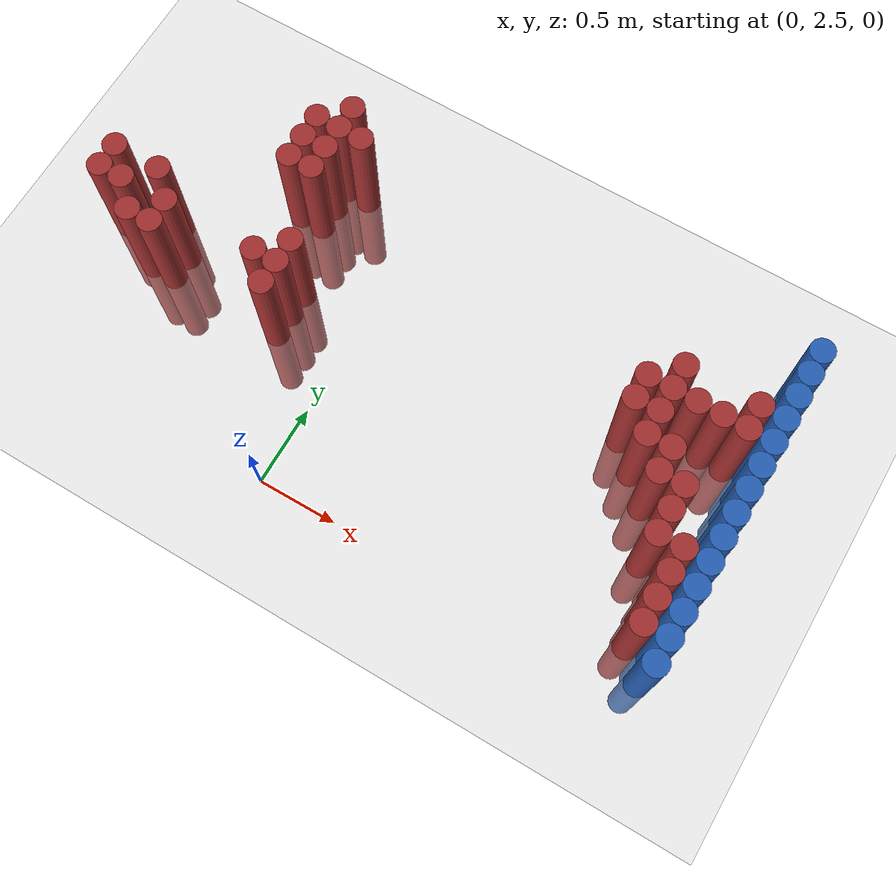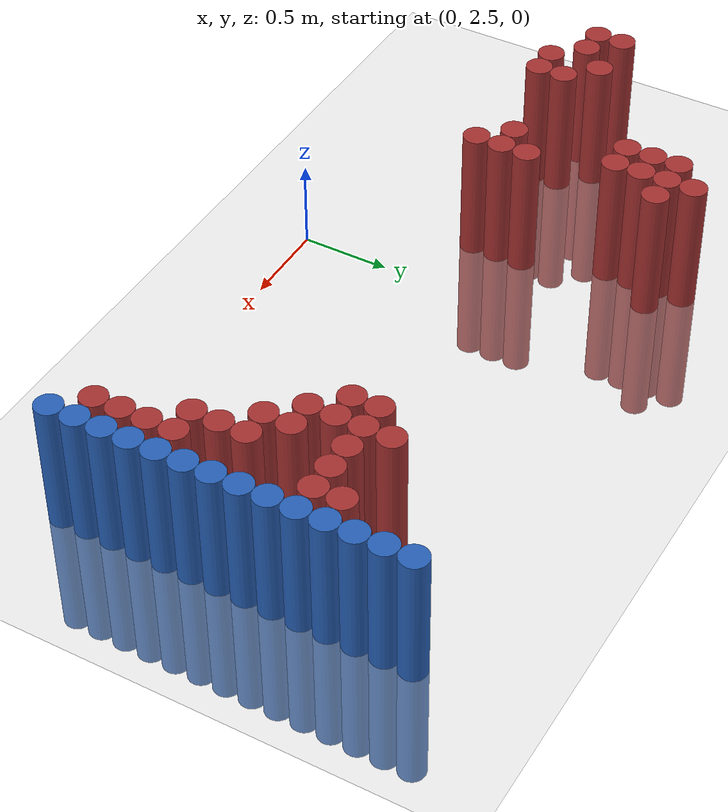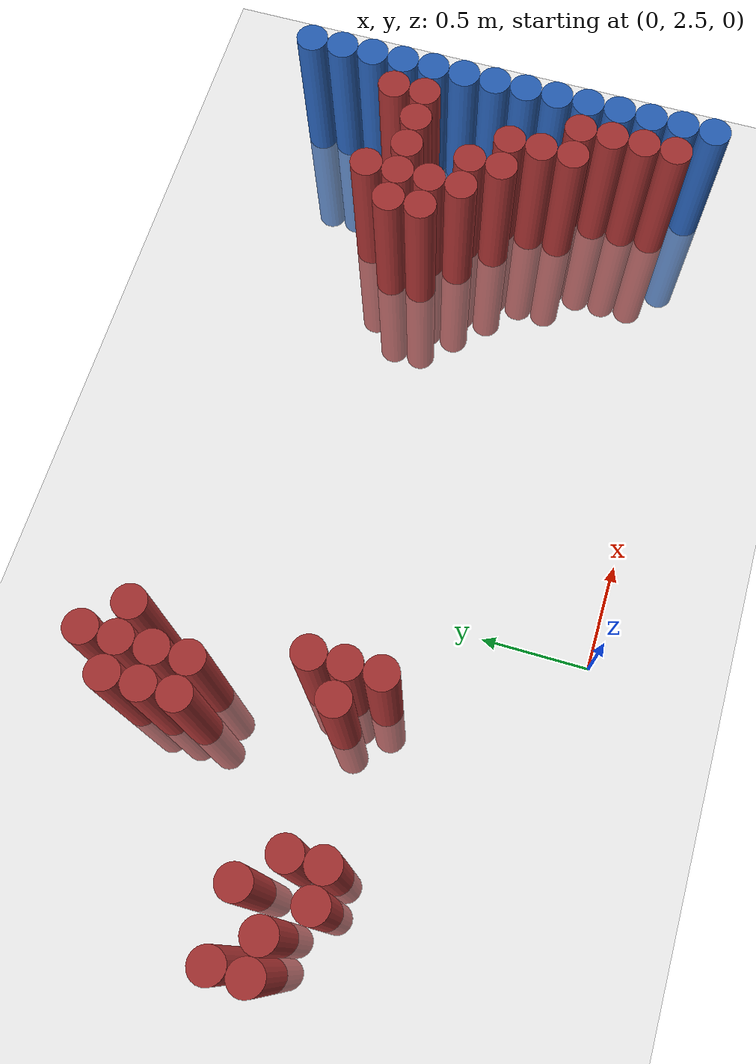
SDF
<sdf version="1.6">
 <world name="default">
  <model name="ground_plane">
   <static>1</static>
   <link name="link">
    <collision name="collision">
     <geometry><plane><normal>0 0 1</normal><size>100 100</size></plane></geometry>
     <surface><friction><ode><mu>100</mu><mu2>50</mu2></ode></friction></surface>
    </collision>
    <visual name="visual">
     <cast_shadows>0</cast_shadows>
     <geometry><plane><normal>0 0 1</normal><size>100 100</size></plane></geometry>
     <material>
      <script><uri>file://media/materials/scripts/gazebo.material</uri><name>Gazebo/Grey</name></script>
     </material>
    </visual>
   </link>
  </model>
  <model name="unit_cylinder_152">
   <static>1</static>
   <pose>-1.625000 3.475000 0.000000 0.000000 0.000000 0.000000</pose>
   <link name="link">
    <inertial>
     <mass>1</mass>
     <inertia><ixx>0.145833</ixx><ixy>0</ixy><ixz>0</ixz><iyy>0.145833</iyy><iyz>0</iyz><izz>0.125</izz></inertia>
    </inertial>
    <collision name="collision">
     <geometry><cylinder><radius>0.075000</radius><length>1.5</length></cylinder></geometry>
    </collision>
    <visual name="visual">
     <geometry><cylinder><radius>0.075000</radius><length>1.5</length></cylinder></geometry>
     <material>
      <ambient>0.648000 0.192000 0.192000 1</ambient>
      <diffuse>0.648000 0.192000 0.192000 1</diffuse>
     </material>
     <material>
      <script><name>Gazebo/Grey</name><uri>file://media/materials/scripts/gazebo.material</uri></script>
     </material>
    </visual>
   </link>
  </model>
  <model name="unit_cylinder_153">
   <static>1</static>
   <pose>-1.625000 3.625000 0.000000 0.000000 0.000000 0.000000</pose>
   <link name="link">
    <inertial>
     <mass>1</mass>
     <inertia><ixx>0.145833</ixx><ixy>0</ixy><ixz>0</ixz><iyy>0.145833</iyy><iyz>0</iyz><izz>0.125</izz></inertia>
    </inertial>
    <collision name="collision">
     <geometry><cylinder><radius>0.075000</radius><length>1.5</length></cylinder></geometry>
    </collision>
    <visual name="visual">
     <geometry><cylinder><radius>0.075000</radius><length>1.5</length></cylinder></geometry>
     <material>
      <ambient>0.648000 0.192000 0.192000 1</ambient>
      <diffuse>0.648000 0.192000 0.192000 1</diffuse>
     </material>
     <material>
      <script><name>Gazebo/Grey</name><uri>file://media/materials/scripts/gazebo.material</uri></script>
     </material>
    </visual>
   </link>
  </model>
  <model name="unit_cylinder_154">
   <static>1</static>
   <pose>-1.475000 3.475000 0.000000 0.000000 0.000000 0.000000</pose>
   <link name="link">
    <inertial>
     <mass>1</mass>
     <inertia><ixx>0.145833</ixx><ixy>0</ixy><ixz>0</ixz><iyy>0.145833</iyy><iyz>0</iyz><izz>0.125</izz></inertia>
    </inertial>
    <collision name="collision">
     <geometry><cylinder><radius>0.075000</radius><length>1.5</length></cylinder></geometry>
    </collision>
    <visual name="visual">
     <geometry><cylinder><radius>0.075000</radius><length>1.5</length></cylinder></geometry>
     <material>
      <ambient>0.648000 0.192000 0.192000 1</ambient>
      <diffuse>0.648000 0.192000 0.192000 1</diffuse>
     </material>
     <material>
      <script><name>Gazebo/Grey</name><uri>file://media/materials/scripts/gazebo.material</uri></script>
     </material>
    </visual>
   </link>
  </model>
  <model name="unit_cylinder_156">
   <static>1</static>
   <pose>-1.325000 3.325000 0.000000 0.000000 0.000000 0.000000</pose>
   <link name="link">
    <inertial>
     <mass>1</mass>
     <inertia><ixx>0.145833</ixx><ixy>0</ixy><ixz>0</ixz><iyy>0.145833</iyy><iyz>0</iyz><izz>0.125</izz></inertia>
    </inertial>
    <collision name="collision">
     <geometry><cylinder><radius>0.075000</radius><length>1.5</length></cylinder></geometry>
    </collision>
    <visual name="visual">
     <geometry><cylinder><radius>0.075000</radius><length>1.5</length></cylinder></geometry>
     <material>
      <ambient>0.648000 0.192000 0.192000 1</ambient>
      <diffuse>0.648000 0.192000 0.192000 1</diffuse>
     </material>
     <material>
      <script><name>Gazebo/Grey</name><uri>file://media/materials/scripts/gazebo.material</uri></script>
     </material>
    </visual>
   </link>
  </model>
  <model name="unit_cylinder_157">
   <static>1</static>
   <pose>-1.325000 3.625000 0.000000 0.000000 0.000000 0.000000</pose>
   <link name="link">
    <inertial>
     <mass>1</mass>
     <inertia><ixx>0.145833</ixx><ixy>0</ixy><ixz>0</ixz><iyy>0.145833</iyy><iyz>0</iyz><izz>0.125</izz></inertia>
    </inertial>
    <collision name="collision">
     <geometry><cylinder><radius>0.075000</radius><length>1.5</length></cylinder></geometry>
    </collision>
    <visual name="visual">
     <geometry><cylinder><radius>0.075000</radius><length>1.5</length></cylinder></geometry>
     <material>
      <ambient>0.648000 0.192000 0.192000 1</ambient>
      <diffuse>0.648000 0.192000 0.192000 1</diffuse>
     </material>
     <material>
      <script><name>Gazebo/Grey</name><uri>file://media/materials/scripts/gazebo.material</uri></script>
     </material>
    </visual>
   </link>
  </model>
  <model name="unit_cylinder_160">
   <static>1</static>
   <pose>-1.175000 3.325000 0.000000 0.000000 0.000000 0.000000</pose>
   <link name="link">
    <inertial>
     <mass>1</mass>
     <inertia><ixx>0.145833</ixx><ixy>0</ixy><ixz>0</ixz><iyy>0.145833</iyy><iyz>0</iyz><izz>0.125</izz></inertia>
    </inertial>
    <collision name="collision">
     <geometry><cylinder><radius>0.075000</radius><length>1.5</length></cylinder></geometry>
    </collision>
    <visual name="visual">
     <geometry><cylinder><radius>0.075000</radius><length>1.5</length></cylinder></geometry>
     <material>
      <ambient>0.648000 0.192000 0.192000 1</ambient>
      <diffuse>0.648000 0.192000 0.192000 1</diffuse>
     </material>
     <material>
      <script><name>Gazebo/Grey</name><uri>file://media/materials/scripts/gazebo.material</uri></script>
     </material>
    </visual>
   </link>
  </model>
  <model name="unit_cylinder_161">
   <static>1</static>
   <pose>-1.175000 3.475000 0.000000 0.000000 0.000000 0.000000</pose>
   <link name="link">
    <inertial>
     <mass>1</mass>
     <inertia><ixx>0.145833</ixx><ixy>0</ixy><ixz>0</ixz><iyy>0.145833</iyy><iyz>0</iyz><izz>0.125</izz></inertia>
    </inertial>
    <collision name="collision">
     <geometry><cylinder><radius>0.075000</radius><length>1.5</length></cylinder></geometry>
    </collision>
    <visual name="visual">
     <geometry><cylinder><radius>0.075000</radius><length>1.5</length></cylinder></geometry>
     <material>
      <ambient>0.648000 0.192000 0.192000 1</ambient>
      <diffuse>0.648000 0.192000 0.192000 1</diffuse>
     </material>
     <material>
      <script><name>Gazebo/Grey</name><uri>file://media/materials/scripts/gazebo.material</uri></script>
     </material>
    </visual>
   </link>
  </model>
  <model name="unit_cylinder_172">
   <static>1</static>
   <pose>-0.725000 4.075000 0.000000 0.000000 0.000000 0.000000</pose>
   <link name="link">
    <inertial>
     <mass>1</mass>
     <inertia><ixx>0.145833</ixx><ixy>0</ixy><ixz>0</ixz><iyy>0.145833</iyy><iyz>0</iyz><izz>0.125</izz></inertia>
    </inertial>
    <collision name="collision">
     <geometry><cylinder><radius>0.075000</radius><length>1.5</length></cylinder></geometry>
    </collision>
    <visual name="visual">
     <geometry><cylinder><radius>0.075000</radius><length>1.5</length></cylinder></geometry>
     <material>
      <ambient>0.648000 0.192000 0.192000 1</ambient>
      <diffuse>0.648000 0.192000 0.192000 1</diffuse>
     </material>
     <material>
      <script><name>Gazebo/Grey</name><uri>file://media/materials/scripts/gazebo.material</uri></script>
     </material>
    </visual>
   </link>
  </model>
  <model name="unit_cylinder_173">
   <static>1</static>
   <pose>-0.725000 4.225000 0.000000 0.000000 0.000000 0.000000</pose>
   <link name="link">
    <inertial>
     <mass>1</mass>
     <inertia><ixx>0.145833</ixx><ixy>0</ixy><ixz>0</ixz><iyy>0.145833</iyy><iyz>0</iyz><izz>0.125</izz></inertia>
    </inertial>
    <collision name="collision">
     <geometry><cylinder><radius>0.075000</radius><length>1.5</length></cylinder></geometry>
    </collision>
    <visual name="visual">
     <geometry><cylinder><radius>0.075000</radius><length>1.5</length></cylinder></geometry>
     <material>
      <ambient>0.648000 0.192000 0.192000 1</ambient>
      <diffuse>0.648000 0.192000 0.192000 1</diffuse>
     </material>
     <material>
      <script><name>Gazebo/Grey</name><uri>file://media/materials/scripts/gazebo.material</uri></script>
     </material>
    </visual>
   </link>
  </model>
  <model name="unit_cylinder_174">
   <static>1</static>
   <pose>-0.725000 4.375000 0.000000 0.000000 0.000000 0.000000</pose>
   <link name="link">
    <inertial>
     <mass>1</mass>
     <inertia><ixx>0.145833</ixx><ixy>0</ixy><ixz>0</ixz><iyy>0.145833</iyy><iyz>0</iyz><izz>0.125</izz></inertia>
    </inertial>
    <collision name="collision">
     <geometry><cylinder><radius>0.075000</radius><length>1.5</length></cylinder></geometry>
    </collision>
    <visual name="visual">
     <geometry><cylinder><radius>0.075000</radius><length>1.5</length></cylinder></geometry>
     <material>
      <ambient>0.648000 0.192000 0.192000 1</ambient>
      <diffuse>0.648000 0.192000 0.192000 1</diffuse>
     </material>
     <material>
      <script><name>Gazebo/Grey</name><uri>file://media/materials/scripts/gazebo.material</uri></script>
     </material>
    </visual>
   </link>
  </model>
  <model name="unit_cylinder_175">
   <static>1</static>
   <pose>-0.575000 3.475000 0.000000 0.000000 0.000000 0.000000</pose>
   <link name="link">
    <inertial>
     <mass>1</mass>
     <inertia><ixx>0.145833</ixx><ixy>0</ixy><ixz>0</ixz><iyy>0.145833</iyy><iyz>0</iyz><izz>0.125</izz></inertia>
    </inertial>
    <collision name="collision">
     <geometry><cylinder><radius>0.075000</radius><length>1.5</length></cylinder></geometry>
    </collision>
    <visual name="visual">
     <geometry><cylinder><radius>0.075000</radius><length>1.5</length></cylinder></geometry>
     <material>
      <ambient>0.648000 0.192000 0.192000 1</ambient>
      <diffuse>0.648000 0.192000 0.192000 1</diffuse>
     </material>
     <material>
      <script><name>Gazebo/Grey</name><uri>file://media/materials/scripts/gazebo.material</uri></script>
     </material>
    </visual>
   </link>
  </model>
  <model name="unit_cylinder_176">
   <static>1</static>
   <pose>-0.575000 4.075000 0.000000 0.000000 0.000000 0.000000</pose>
   <link name="link">
    <inertial>
     <mass>1</mass>
     <inertia><ixx>0.145833</ixx><ixy>0</ixy><ixz>0</ixz><iyy>0.145833</iyy><iyz>0</iyz><izz>0.125</izz></inertia>
    </inertial>
    <collision name="collision">
     <geometry><cylinder><radius>0.075000</radius><length>1.5</length></cylinder></geometry>
    </collision>
    <visual name="visual">
     <geometry><cylinder><radius>0.075000</radius><length>1.5</length></cylinder></geometry>
     <material>
      <ambient>0.648000 0.192000 0.192000 1</ambient>
      <diffuse>0.648000 0.192000 0.192000 1</diffuse>
     </material>
     <material>
      <script><name>Gazebo/Grey</name><uri>file://media/materials/scripts/gazebo.material</uri></script>
     </material>
    </visual>
   </link>
  </model>
  <model name="unit_cylinder_177">
   <static>1</static>
   <pose>-0.575000 4.225000 0.000000 0.000000 0.000000 0.000000</pose>
   <link name="link">
    <inertial>
     <mass>1</mass>
     <inertia><ixx>0.145833</ixx><ixy>0</ixy><ixz>0</ixz><iyy>0.145833</iyy><iyz>0</iyz><izz>0.125</izz></inertia>
    </inertial>
    <collision name="collision">
     <geometry><cylinder><radius>0.075000</radius><length>1.5</length></cylinder></geometry>
    </collision>
    <visual name="visual">
     <geometry><cylinder><radius>0.075000</radius><length>1.5</length></cylinder></geometry>
     <material>
      <ambient>0.648000 0.192000 0.192000 1</ambient>
      <diffuse>0.648000 0.192000 0.192000 1</diffuse>
     </material>
     <material>
      <script><name>Gazebo/Grey</name><uri>file://media/materials/scripts/gazebo.material</uri></script>
     </material>
    </visual>
   </link>
  </model>
  <model name="unit_cylinder_178">
   <static>1</static>
   <pose>-0.575000 4.375000 0.000000 0.000000 0.000000 0.000000</pose>
   <link name="link">
    <inertial>
     <mass>1</mass>
     <inertia><ixx>0.145833</ixx><ixy>0</ixy><ixz>0</ixz><iyy>0.145833</iyy><iyz>0</iyz><izz>0.125</izz></inertia>
    </inertial>
    <collision name="collision">
     <geometry><cylinder><radius>0.075000</radius><length>1.5</length></cylinder></geometry>
    </collision>
    <visual name="visual">
     <geometry><cylinder><radius>0.075000</radius><length>1.5</length></cylinder></geometry>
     <material>
      <ambient>0.648000 0.192000 0.192000 1</ambient>
      <diffuse>0.648000 0.192000 0.192000 1</diffuse>
     </material>
     <material>
      <script><name>Gazebo/Grey</name><uri>file://media/materials/scripts/gazebo.material</uri></script>
     </material>
    </visual>
   </link>
  </model>
  <model name="unit_cylinder_179">
   <static>1</static>
   <pose>-0.575000 4.525000 0.000000 0.000000 0.000000 0.000000</pose>
   <link name="link">
    <inertial>
     <mass>1</mass>
     <inertia><ixx>0.145833</ixx><ixy>0</ixy><ixz>0</ixz><iyy>0.145833</iyy><iyz>0</iyz><izz>0.125</izz></inertia>
    </inertial>
    <collision name="collision">
     <geometry><cylinder><radius>0.075000</radius><length>1.5</length></cylinder></geometry>
    </collision>
    <visual name="visual">
     <geometry><cylinder><radius>0.075000</radius><length>1.5</length></cylinder></geometry>
     <material>
      <ambient>0.648000 0.192000 0.192000 1</ambient>
      <diffuse>0.648000 0.192000 0.192000 1</diffuse>
     </material>
     <material>
      <script><name>Gazebo/Grey</name><uri>file://media/materials/scripts/gazebo.material</uri></script>
     </material>
    </visual>
   </link>
  </model>
  <model name="unit_cylinder_181">
   <static>1</static>
   <pose>-0.425000 3.325000 0.000000 0.000000 0.000000 0.000000</pose>
   <link name="link">
    <inertial>
     <mass>1</mass>
     <inertia><ixx>0.145833</ixx><ixy>0</ixy><ixz>0</ixz><iyy>0.145833</iyy><iyz>0</iyz><izz>0.125</izz></inertia>
    </inertial>
    <collision name="collision">
     <geometry><cylinder><radius>0.075000</radius><length>1.5</length></cylinder></geometry>
    </collision>
    <visual name="visual">
     <geometry><cylinder><radius>0.075000</radius><length>1.5</length></cylinder></geometry>
     <material>
      <ambient>0.648000 0.192000 0.192000 1</ambient>
      <diffuse>0.648000 0.192000 0.192000 1</diffuse>
     </material>
     <material>
      <script><name>Gazebo/Grey</name><uri>file://media/materials/scripts/gazebo.material</uri></script>
     </material>
    </visual>
   </link>
  </model>
  <model name="unit_cylinder_182">
   <static>1</static>
   <pose>-0.425000 3.475000 0.000000 0.000000 0.000000 0.000000</pose>
   <link name="link">
    <inertial>
     <mass>1</mass>
     <inertia><ixx>0.145833</ixx><ixy>0</ixy><ixz>0</ixz><iyy>0.145833</iyy><iyz>0</iyz><izz>0.125</izz></inertia>
    </inertial>
    <collision name="collision">
     <geometry><cylinder><radius>0.075000</radius><length>1.5</length></cylinder></geometry>
    </collision>
    <visual name="visual">
     <geometry><cylinder><radius>0.075000</radius><length>1.5</length></cylinder></geometry>
     <material>
      <ambient>0.648000 0.192000 0.192000 1</ambient>
      <diffuse>0.648000 0.192000 0.192000 1</diffuse>
     </material>
     <material>
      <script><name>Gazebo/Grey</name><uri>file://media/materials/scripts/gazebo.material</uri></script>
     </material>
    </visual>
   </link>
  </model>
  <model name="unit_cylinder_183">
   <static>1</static>
   <pose>-0.425000 3.625000 0.000000 0.000000 0.000000 0.000000</pose>
   <link name="link">
    <inertial>
     <mass>1</mass>
     <inertia><ixx>0.145833</ixx><ixy>0</ixy><ixz>0</ixz><iyy>0.145833</iyy><iyz>0</iyz><izz>0.125</izz></inertia>
    </inertial>
    <collision name="collision">
     <geometry><cylinder><radius>0.075000</radius><length>1.5</length></cylinder></geometry>
    </collision>
    <visual name="visual">
     <geometry><cylinder><radius>0.075000</radius><length>1.5</length></cylinder></geometry>
     <material>
      <ambient>0.648000 0.192000 0.192000 1</ambient>
      <diffuse>0.648000 0.192000 0.192000 1</diffuse>
     </material>
     <material>
      <script><name>Gazebo/Grey</name><uri>file://media/materials/scripts/gazebo.material</uri></script>
     </material>
    </visual>
   </link>
  </model>
  <model name="unit_cylinder_184">
   <static>1</static>
   <pose>-0.425000 4.375000 0.000000 0.000000 0.000000 0.000000</pose>
   <link name="link">
    <inertial>
     <mass>1</mass>
     <inertia><ixx>0.145833</ixx><ixy>0</ixy><ixz>0</ixz><iyy>0.145833</iyy><iyz>0</iyz><izz>0.125</izz></inertia>
    </inertial>
    <collision name="collision">
     <geometry><cylinder><radius>0.075000</radius><length>1.5</length></cylinder></geometry>
    </collision>
    <visual name="visual">
     <geometry><cylinder><radius>0.075000</radius><length>1.5</length></cylinder></geometry>
     <material>
      <ambient>0.648000 0.192000 0.192000 1</ambient>
      <diffuse>0.648000 0.192000 0.192000 1</diffuse>
     </material>
     <material>
      <script><name>Gazebo/Grey</name><uri>file://media/materials/scripts/gazebo.material</uri></script>
     </material>
    </visual>
   </link>
  </model>
  <model name="unit_cylinder_204">
   <static>1</static>
   <pose>1.675000 3.775000 0.000000 0.000000 0.000000 0.000000</pose>
   <link name="link">
    <inertial>
     <mass>1</mass>
     <inertia><ixx>0.145833</ixx><ixy>0</ixy><ixz>0</ixz><iyy>0.145833</iyy><iyz>0</iyz><izz>0.125</izz></inertia>
    </inertial>
    <collision name="collision">
     <geometry><cylinder><radius>0.075000</radius><length>1.5</length></cylinder></geometry>
    </collision>
    <visual name="visual">
     <geometry><cylinder><radius>0.075000</radius><length>1.5</length></cylinder></geometry>
     <material>
      <ambient>0.648000 0.192000 0.192000 1</ambient>
      <diffuse>0.648000 0.192000 0.192000 1</diffuse>
     </material>
     <material>
      <script><name>Gazebo/Grey</name><uri>file://media/materials/scripts/gazebo.material</uri></script>
     </material>
    </visual>
   </link>
  </model>
  <model name="unit_cylinder_205">
   <static>1</static>
   <pose>1.675000 3.925000 0.000000 0.000000 0.000000 0.000000</pose>
   <link name="link">
    <inertial>
     <mass>1</mass>
     <inertia><ixx>0.145833</ixx><ixy>0</ixy><ixz>0</ixz><iyy>0.145833</iyy><iyz>0</iyz><izz>0.125</izz></inertia>
    </inertial>
    <collision name="collision">
     <geometry><cylinder><radius>0.075000</radius><length>1.5</length></cylinder></geometry>
    </collision>
    <visual name="visual">
     <geometry><cylinder><radius>0.075000</radius><length>1.5</length></cylinder></geometry>
     <material>
      <ambient>0.648000 0.192000 0.192000 1</ambient>
      <diffuse>0.648000 0.192000 0.192000 1</diffuse>
     </material>
     <material>
      <script><name>Gazebo/Grey</name><uri>file://media/materials/scripts/gazebo.material</uri></script>
     </material>
    </visual>
   </link>
  </model>
  <model name="unit_cylinder_206">
   <static>1</static>
   <pose>1.825000 3.625000 0.000000 0.000000 0.000000 0.000000</pose>
   <link name="link">
    <inertial>
     <mass>1</mass>
     <inertia><ixx>0.145833</ixx><ixy>0</ixy><ixz>0</ixz><iyy>0.145833</iyy><iyz>0</iyz><izz>0.125</izz></inertia>
    </inertial>
    <collision name="collision">
     <geometry><cylinder><radius>0.075000</radius><length>1.5</length></cylinder></geometry>
    </collision>
    <visual name="visual">
     <geometry><cylinder><radius>0.075000</radius><length>1.5</length></cylinder></geometry>
     <material>
      <ambient>0.648000 0.192000 0.192000 1</ambient>
      <diffuse>0.648000 0.192000 0.192000 1</diffuse>
     </material>
     <material>
      <script><name>Gazebo/Grey</name><uri>file://media/materials/scripts/gazebo.material</uri></script>
     </material>
    </visual>
   </link>
  </model>
  <model name="unit_cylinder_207">
   <static>1</static>
   <pose>1.825000 3.775000 0.000000 0.000000 0.000000 0.000000</pose>
   <link name="link">
    <inertial>
     <mass>1</mass>
     <inertia><ixx>0.145833</ixx><ixy>0</ixy><ixz>0</ixz><iyy>0.145833</iyy><iyz>0</iyz><izz>0.125</izz></inertia>
    </inertial>
    <collision name="collision">
     <geometry><cylinder><radius>0.075000</radius><length>1.5</length></cylinder></geometry>
    </collision>
    <visual name="visual">
     <geometry><cylinder><radius>0.075000</radius><length>1.5</length></cylinder></geometry>
     <material>
      <ambient>0.648000 0.192000 0.192000 1</ambient>
      <diffuse>0.648000 0.192000 0.192000 1</diffuse>
     </material>
     <material>
      <script><name>Gazebo/Grey</name><uri>file://media/materials/scripts/gazebo.material</uri></script>
     </material>
    </visual>
   </link>
  </model>
  <model name="unit_cylinder_208">
   <static>1</static>
   <pose>1.825000 3.925000 0.000000 0.000000 0.000000 0.000000</pose>
   <link name="link">
    <inertial>
     <mass>1</mass>
     <inertia><ixx>0.145833</ixx><ixy>0</ixy><ixz>0</ixz><iyy>0.145833</iyy><iyz>0</iyz><izz>0.125</izz></inertia>
    </inertial>
    <collision name="collision">
     <geometry><cylinder><radius>0.075000</radius><length>1.5</length></cylinder></geometry>
    </collision>
    <visual name="visual">
     <geometry><cylinder><radius>0.075000</radius><length>1.5</length></cylinder></geometry>
     <material>
      <ambient>0.648000 0.192000 0.192000 1</ambient>
      <diffuse>0.648000 0.192000 0.192000 1</diffuse>
     </material>
     <material>
      <script><name>Gazebo/Grey</name><uri>file://media/materials/scripts/gazebo.material</uri></script>
     </material>
    </visual>
   </link>
  </model>
  <model name="unit_cylinder_209">
   <static>1</static>
   <pose>1.825000 4.075000 0.000000 0.000000 0.000000 0.000000</pose>
   <link name="link">
    <inertial>
     <mass>1</mass>
     <inertia><ixx>0.145833</ixx><ixy>0</ixy><ixz>0</ixz><iyy>0.145833</iyy><iyz>0</iyz><izz>0.125</izz></inertia>
    </inertial>
    <collision name="collision">
     <geometry><cylinder><radius>0.075000</radius><length>1.5</length></cylinder></geometry>
    </collision>
    <visual name="visual">
     <geometry><cylinder><radius>0.075000</radius><length>1.5</length></cylinder></geometry>
     <material>
      <ambient>0.648000 0.192000 0.192000 1</ambient>
      <diffuse>0.648000 0.192000 0.192000 1</diffuse>
     </material>
     <material>
      <script><name>Gazebo/Grey</name><uri>file://media/materials/scripts/gazebo.material</uri></script>
     </material>
    </visual>
   </link>
  </model>
  <model name="unit_cylinder_210">
   <static>1</static>
   <pose>1.975000 3.475000 0.000000 0.000000 0.000000 0.000000</pose>
   <link name="link">
    <inertial>
     <mass>1</mass>
     <inertia><ixx>0.145833</ixx><ixy>0</ixy><ixz>0</ixz><iyy>0.145833</iyy><iyz>0</iyz><izz>0.125</izz></inertia>
    </inertial>
    <collision name="collision">
     <geometry><cylinder><radius>0.075000</radius><length>1.5</length></cylinder></geometry>
    </collision>
    <visual name="visual">
     <geometry><cylinder><radius>0.075000</radius><length>1.5</length></cylinder></geometry>
     <material>
      <ambient>0.648000 0.192000 0.192000 1</ambient>
      <diffuse>0.648000 0.192000 0.192000 1</diffuse>
     </material>
     <material>
      <script><name>Gazebo/Grey</name><uri>file://media/materials/scripts/gazebo.material</uri></script>
     </material>
    </visual>
   </link>
  </model>
  <model name="unit_cylinder_211">
   <static>1</static>
   <pose>1.975000 3.625000 0.000000 0.000000 0.000000 0.000000</pose>
   <link name="link">
    <inertial>
     <mass>1</mass>
     <inertia><ixx>0.145833</ixx><ixy>0</ixy><ixz>0</ixz><iyy>0.145833</iyy><iyz>0</iyz><izz>0.125</izz></inertia>
    </inertial>
    <collision name="collision">
     <geometry><cylinder><radius>0.075000</radius><length>1.5</length></cylinder></geometry>
    </collision>
    <visual name="visual">
     <geometry><cylinder><radius>0.075000</radius><length>1.5</length></cylinder></geometry>
     <material>
      <ambient>0.648000 0.192000 0.192000 1</ambient>
      <diffuse>0.648000 0.192000 0.192000 1</diffuse>
     </material>
     <material>
      <script><name>Gazebo/Grey</name><uri>file://media/materials/scripts/gazebo.material</uri></script>
     </material>
    </visual>
   </link>
  </model>
  <model name="unit_cylinder_212">
   <static>1</static>
   <pose>1.975000 3.925000 0.000000 0.000000 0.000000 0.000000</pose>
   <link name="link">
    <inertial>
     <mass>1</mass>
     <inertia><ixx>0.145833</ixx><ixy>0</ixy><ixz>0</ixz><iyy>0.145833</iyy><iyz>0</iyz><izz>0.125</izz></inertia>
    </inertial>
    <collision name="collision">
     <geometry><cylinder><radius>0.075000</radius><length>1.5</length></cylinder></geometry>
    </collision>
    <visual name="visual">
     <geometry><cylinder><radius>0.075000</radius><length>1.5</length></cylinder></geometry>
     <material>
      <ambient>0.648000 0.192000 0.192000 1</ambient>
      <diffuse>0.648000 0.192000 0.192000 1</diffuse>
     </material>
     <material>
      <script><name>Gazebo/Grey</name><uri>file://media/materials/scripts/gazebo.material</uri></script>
     </material>
    </visual>
   </link>
  </model>
  <model name="unit_cylinder_213">
   <static>1</static>
   <pose>2.125000 3.175000 0.000000 0.000000 0.000000 0.000000</pose>
   <link name="link">
    <inertial>
     <mass>1</mass>
     <inertia><ixx>0.145833</ixx><ixy>0</ixy><ixz>0</ixz><iyy>0.145833</iyy><iyz>0</iyz><izz>0.125</izz></inertia>
    </inertial>
    <collision name="collision">
     <geometry><cylinder><radius>0.075000</radius><length>1.5</length></cylinder></geometry>
    </collision>
    <visual name="visual">
     <geometry><cylinder><radius>0.075000</radius><length>1.5</length></cylinder></geometry>
     <material>
      <ambient>0.648000 0.192000 0.192000 1</ambient>
      <diffuse>0.648000 0.192000 0.192000 1</diffuse>
     </material>
     <material>
      <script><name>Gazebo/Grey</name><uri>file://media/materials/scripts/gazebo.material</uri></script>
     </material>
    </visual>
   </link>
  </model>
  <model name="unit_cylinder_214">
   <static>1</static>
   <pose>2.125000 3.325000 0.000000 0.000000 0.000000 0.000000</pose>
   <link name="link">
    <inertial>
     <mass>1</mass>
     <inertia><ixx>0.145833</ixx><ixy>0</ixy><ixz>0</ixz><iyy>0.145833</iyy><iyz>0</iyz><izz>0.125</izz></inertia>
    </inertial>
    <collision name="collision">
     <geometry><cylinder><radius>0.075000</radius><length>1.5</length></cylinder></geometry>
    </collision>
    <visual name="visual">
     <geometry><cylinder><radius>0.075000</radius><length>1.5</length></cylinder></geometry>
     <material>
      <ambient>0.648000 0.192000 0.192000 1</ambient>
      <diffuse>0.648000 0.192000 0.192000 1</diffuse>
     </material>
     <material>
      <script><name>Gazebo/Grey</name><uri>file://media/materials/scripts/gazebo.material</uri></script>
     </material>
    </visual>
   </link>
  </model>
  <model name="unit_cylinder_215">
   <static>1</static>
   <pose>2.125000 3.475000 0.000000 0.000000 0.000000 0.000000</pose>
   <link name="link">
    <inertial>
     <mass>1</mass>
     <inertia><ixx>0.145833</ixx><ixy>0</ixy><ixz>0</ixz><iyy>0.145833</iyy><iyz>0</iyz><izz>0.125</izz></inertia>
    </inertial>
    <collision name="collision">
     <geometry><cylinder><radius>0.075000</radius><length>1.5</length></cylinder></geometry>
    </collision>
    <visual name="visual">
     <geometry><cylinder><radius>0.075000</radius><length>1.5</length></cylinder></geometry>
     <material>
      <ambient>0.648000 0.192000 0.192000 1</ambient>
      <diffuse>0.648000 0.192000 0.192000 1</diffuse>
     </material>
     <material>
      <script><name>Gazebo/Grey</name><uri>file://media/materials/scripts/gazebo.material</uri></script>
     </material>
    </visual>
   </link>
  </model>
  <model name="unit_cylinder_216">
   <static>1</static>
   <pose>2.125000 3.925000 0.000000 0.000000 0.000000 0.000000</pose>
   <link name="link">
    <inertial>
     <mass>1</mass>
     <inertia><ixx>0.145833</ixx><ixy>0</ixy><ixz>0</ixz><iyy>0.145833</iyy><iyz>0</iyz><izz>0.125</izz></inertia>
    </inertial>
    <collision name="collision">
     <geometry><cylinder><radius>0.075000</radius><length>1.5</length></cylinder></geometry>
    </collision>
    <visual name="visual">
     <geometry><cylinder><radius>0.075000</radius><length>1.5</length></cylinder></geometry>
     <material>
      <ambient>0.648000 0.192000 0.192000 1</ambient>
      <diffuse>0.648000 0.192000 0.192000 1</diffuse>
     </material>
     <material>
      <script><name>Gazebo/Grey</name><uri>file://media/materials/scripts/gazebo.material</uri></script>
     </material>
    </visual>
   </link>
  </model>
  <model name="unit_cylinder_222">
   <static>1</static>
   <pose>2.275000 2.725000 0.000000 0.000000 0.000000 0.000000</pose>
   <link name="link">
    <inertial>
     <mass>1</mass>
     <inertia><ixx>0.145833</ixx><ixy>0</ixy><ixz>0</ixz><iyy>0.145833</iyy><iyz>0</iyz><izz>0.125</izz></inertia>
    </inertial>
    <collision name="collision">
     <geometry><cylinder><radius>0.075000</radius><length>1.5</length></cylinder></geometry>
    </collision>
    <visual name="visual">
     <geometry><cylinder><radius>0.075000</radius><length>1.5</length></cylinder></geometry>
     <material>
      <ambient>0.648000 0.192000 0.192000 1</ambient>
      <diffuse>0.648000 0.192000 0.192000 1</diffuse>
     </material>
     <material>
      <script><name>Gazebo/Grey</name><uri>file://media/materials/scripts/gazebo.material</uri></script>
     </material>
    </visual>
   </link>
  </model>
  <model name="unit_cylinder_223">
   <static>1</static>
   <pose>2.275000 2.875000 0.000000 0.000000 0.000000 0.000000</pose>
   <link name="link">
    <inertial>
     <mass>1</mass>
     <inertia><ixx>0.145833</ixx><ixy>0</ixy><ixz>0</ixz><iyy>0.145833</iyy><iyz>0</iyz><izz>0.125</izz></inertia>
    </inertial>
    <collision name="collision">
     <geometry><cylinder><radius>0.075000</radius><length>1.5</length></cylinder></geometry>
    </collision>
    <visual name="visual">
     <geometry><cylinder><radius>0.075000</radius><length>1.5</length></cylinder></geometry>
     <material>
      <ambient>0.648000 0.192000 0.192000 1</ambient>
      <diffuse>0.648000 0.192000 0.192000 1</diffuse>
     </material>
     <material>
      <script><name>Gazebo/Grey</name><uri>file://media/materials/scripts/gazebo.material</uri></script>
     </material>
    </visual>
   </link>
  </model>
  <model name="unit_cylinder_224">
   <static>1</static>
   <pose>2.275000 3.025000 0.000000 0.000000 0.000000 0.000000</pose>
   <link name="link">
    <inertial>
     <mass>1</mass>
     <inertia><ixx>0.145833</ixx><ixy>0</ixy><ixz>0</ixz><iyy>0.145833</iyy><iyz>0</iyz><izz>0.125</izz></inertia>
    </inertial>
    <collision name="collision">
     <geometry><cylinder><radius>0.075000</radius><length>1.5</length></cylinder></geometry>
    </collision>
    <visual name="visual">
     <geometry><cylinder><radius>0.075000</radius><length>1.5</length></cylinder></geometry>
     <material>
      <ambient>0.648000 0.192000 0.192000 1</ambient>
      <diffuse>0.648000 0.192000 0.192000 1</diffuse>
     </material>
     <material>
      <script><name>Gazebo/Grey</name><uri>file://media/materials/scripts/gazebo.material</uri></script>
     </material>
    </visual>
   </link>
  </model>
  <model name="unit_cylinder_225">
   <static>1</static>
   <pose>2.275000 3.175000 0.000000 0.000000 0.000000 0.000000</pose>
   <link name="link">
    <inertial>
     <mass>1</mass>
     <inertia><ixx>0.145833</ixx><ixy>0</ixy><ixz>0</ixz><iyy>0.145833</iyy><iyz>0</iyz><izz>0.125</izz></inertia>
    </inertial>
    <collision name="collision">
     <geometry><cylinder><radius>0.075000</radius><length>1.5</length></cylinder></geometry>
    </collision>
    <visual name="visual">
     <geometry><cylinder><radius>0.075000</radius><length>1.5</length></cylinder></geometry>
     <material>
      <ambient>0.648000 0.192000 0.192000 1</ambient>
      <diffuse>0.648000 0.192000 0.192000 1</diffuse>
     </material>
     <material>
      <script><name>Gazebo/Grey</name><uri>file://media/materials/scripts/gazebo.material</uri></script>
     </material>
    </visual>
   </link>
  </model>
  <model name="unit_cylinder_226">
   <static>1</static>
   <pose>2.275000 3.925000 0.000000 0.000000 0.000000 0.000000</pose>
   <link name="link">
    <inertial>
     <mass>1</mass>
     <inertia><ixx>0.145833</ixx><ixy>0</ixy><ixz>0</ixz><iyy>0.145833</iyy><iyz>0</iyz><izz>0.125</izz></inertia>
    </inertial>
    <collision name="collision">
     <geometry><cylinder><radius>0.075000</radius><length>1.5</length></cylinder></geometry>
    </collision>
    <visual name="visual">
     <geometry><cylinder><radius>0.075000</radius><length>1.5</length></cylinder></geometry>
     <material>
      <ambient>0.648000 0.192000 0.192000 1</ambient>
      <diffuse>0.648000 0.192000 0.192000 1</diffuse>
     </material>
     <material>
      <script><name>Gazebo/Grey</name><uri>file://media/materials/scripts/gazebo.material</uri></script>
     </material>
    </visual>
   </link>
  </model>
  <model name="unit_cylinder_227">
   <static>1</static>
   <pose>2.275000 4.075000 0.000000 0.000000 0.000000 0.000000</pose>
   <link name="link">
    <inertial>
     <mass>1</mass>
     <inertia><ixx>0.145833</ixx><ixy>0</ixy><ixz>0</ixz><iyy>0.145833</iyy><iyz>0</iyz><izz>0.125</izz></inertia>
    </inertial>
    <collision name="collision">
     <geometry><cylinder><radius>0.075000</radius><length>1.5</length></cylinder></geometry>
    </collision>
    <visual name="visual">
     <geometry><cylinder><radius>0.075000</radius><length>1.5</length></cylinder></geometry>
     <material>
      <ambient>0.648000 0.192000 0.192000 1</ambient>
      <diffuse>0.648000 0.192000 0.192000 1</diffuse>
     </material>
     <material>
      <script><name>Gazebo/Grey</name><uri>file://media/materials/scripts/gazebo.material</uri></script>
     </material>
    </visual>
   </link>
  </model>
  <model name="unit_cylinder_244">
   <static>1</static>
   <pose>2.425000 2.575000 0.000000 0.000000 0.000000 0.000000</pose>
   <link name="link">
    <inertial>
     <mass>1</mass>
     <inertia><ixx>0.145833</ixx><ixy>0</ixy><ixz>0</ixz><iyy>0.145833</iyy><iyz>0</iyz><izz>0.125</izz></inertia>
    </inertial>
    <collision name="collision">
     <geometry><cylinder><radius>0.075000</radius><length>1.5</length></cylinder></geometry>
    </collision>
    <visual name="visual">
     <geometry><cylinder><radius>0.075000</radius><length>1.5</length></cylinder></geometry>
     <material>
      <ambient>0.152000 0.379000 0.720000 1</ambient>
      <diffuse>0.152000 0.379000 0.720000 1</diffuse>
     </material>
     <material>
      <script><name>Gazebo/Grey</name><uri>file://media/materials/scripts/gazebo.material</uri></script>
     </material>
    </visual>
   </link>
  </model>
  <model name="unit_cylinder_245">
   <static>1</static>
   <pose>2.425000 2.725000 0.000000 0.000000 0.000000 0.000000</pose>
   <link name="link">
    <inertial>
     <mass>1</mass>
     <inertia><ixx>0.145833</ixx><ixy>0</ixy><ixz>0</ixz><iyy>0.145833</iyy><iyz>0</iyz><izz>0.125</izz></inertia>
    </inertial>
    <collision name="collision">
     <geometry><cylinder><radius>0.075000</radius><length>1.5</length></cylinder></geometry>
    </collision>
    <visual name="visual">
     <geometry><cylinder><radius>0.075000</radius><length>1.5</length></cylinder></geometry>
     <material>
      <ambient>0.152000 0.379000 0.720000 1</ambient>
      <diffuse>0.152000 0.379000 0.720000 1</diffuse>
     </material>
     <material>
      <script><name>Gazebo/Grey</name><uri>file://media/materials/scripts/gazebo.material</uri></script>
     </material>
    </visual>
   </link>
  </model>
  <model name="unit_cylinder_246">
   <static>1</static>
   <pose>2.425000 2.875000 0.000000 0.000000 0.000000 0.000000</pose>
   <link name="link">
    <inertial>
     <mass>1</mass>
     <inertia><ixx>0.145833</ixx><ixy>0</ixy><ixz>0</ixz><iyy>0.145833</iyy><iyz>0</iyz><izz>0.125</izz></inertia>
    </inertial>
    <collision name="collision">
     <geometry><cylinder><radius>0.075000</radius><length>1.5</length></cylinder></geometry>
    </collision>
    <visual name="visual">
     <geometry><cylinder><radius>0.075000</radius><length>1.5</length></cylinder></geometry>
     <material>
      <ambient>0.152000 0.379000 0.720000 1</ambient>
      <diffuse>0.152000 0.379000 0.720000 1</diffuse>
     </material>
     <material>
      <script><name>Gazebo/Grey</name><uri>file://media/materials/scripts/gazebo.material</uri></script>
     </material>
    </visual>
   </link>
  </model>
  <model name="unit_cylinder_247">
   <static>1</static>
   <pose>2.425000 3.025000 0.000000 0.000000 0.000000 0.000000</pose>
   <link name="link">
    <inertial>
     <mass>1</mass>
     <inertia><ixx>0.145833</ixx><ixy>0</ixy><ixz>0</ixz><iyy>0.145833</iyy><iyz>0</iyz><izz>0.125</izz></inertia>
    </inertial>
    <collision name="collision">
     <geometry><cylinder><radius>0.075000</radius><length>1.5</length></cylinder></geometry>
    </collision>
    <visual name="visual">
     <geometry><cylinder><radius>0.075000</radius><length>1.5</length></cylinder></geometry>
     <material>
      <ambient>0.152000 0.379000 0.720000 1</ambient>
      <diffuse>0.152000 0.379000 0.720000 1</diffuse>
     </material>
     <material>
      <script><name>Gazebo/Grey</name><uri>file://media/materials/scripts/gazebo.material</uri></script>
     </material>
    </visual>
   </link>
  </model>
  <model name="unit_cylinder_248">
   <static>1</static>
   <pose>2.425000 3.175000 0.000000 0.000000 0.000000 0.000000</pose>
   <link name="link">
    <inertial>
     <mass>1</mass>
     <inertia><ixx>0.145833</ixx><ixy>0</ixy><ixz>0</ixz><iyy>0.145833</iyy><iyz>0</iyz><izz>0.125</izz></inertia>
    </inertial>
    <collision name="collision">
     <geometry><cylinder><radius>0.075000</radius><length>1.5</length></cylinder></geometry>
    </collision>
    <visual name="visual">
     <geometry><cylinder><radius>0.075000</radius><length>1.5</length></cylinder></geometry>
     <material>
      <ambient>0.152000 0.379000 0.720000 1</ambient>
      <diffuse>0.152000 0.379000 0.720000 1</diffuse>
     </material>
     <material>
      <script><name>Gazebo/Grey</name><uri>file://media/materials/scripts/gazebo.material</uri></script>
     </material>
    </visual>
   </link>
  </model>
  <model name="unit_cylinder_249">
   <static>1</static>
   <pose>2.425000 3.325000 0.000000 0.000000 0.000000 0.000000</pose>
   <link name="link">
    <inertial>
     <mass>1</mass>
     <inertia><ixx>0.145833</ixx><ixy>0</ixy><ixz>0</ixz><iyy>0.145833</iyy><iyz>0</iyz><izz>0.125</izz></inertia>
    </inertial>
    <collision name="collision">
     <geometry><cylinder><radius>0.075000</radius><length>1.5</length></cylinder></geometry>
    </collision>
    <visual name="visual">
     <geometry><cylinder><radius>0.075000</radius><length>1.5</length></cylinder></geometry>
     <material>
      <ambient>0.152000 0.379000 0.720000 1</ambient>
      <diffuse>0.152000 0.379000 0.720000 1</diffuse>
     </material>
     <material>
      <script><name>Gazebo/Grey</name><uri>file://media/materials/scripts/gazebo.material</uri></script>
     </material>
    </visual>
   </link>
  </model>
  <model name="unit_cylinder_250">
   <static>1</static>
   <pose>2.425000 3.475000 0.000000 0.000000 0.000000 0.000000</pose>
   <link name="link">
    <inertial>
     <mass>1</mass>
     <inertia><ixx>0.145833</ixx><ixy>0</ixy><ixz>0</ixz><iyy>0.145833</iyy><iyz>0</iyz><izz>0.125</izz></inertia>
    </inertial>
    <collision name="collision">
     <geometry><cylinder><radius>0.075000</radius><length>1.5</length></cylinder></geometry>
    </collision>
    <visual name="visual">
     <geometry><cylinder><radius>0.075000</radius><length>1.5</length></cylinder></geometry>
     <material>
      <ambient>0.152000 0.379000 0.720000 1</ambient>
      <diffuse>0.152000 0.379000 0.720000 1</diffuse>
     </material>
     <material>
      <script><name>Gazebo/Grey</name><uri>file://media/materials/scripts/gazebo.material</uri></script>
     </material>
    </visual>
   </link>
  </model>
  <model name="unit_cylinder_251">
   <static>1</static>
   <pose>2.425000 3.625000 0.000000 0.000000 0.000000 0.000000</pose>
   <link name="link">
    <inertial>
     <mass>1</mass>
     <inertia><ixx>0.145833</ixx><ixy>0</ixy><ixz>0</ixz><iyy>0.145833</iyy><iyz>0</iyz><izz>0.125</izz></inertia>
    </inertial>
    <collision name="collision">
     <geometry><cylinder><radius>0.075000</radius><length>1.5</length></cylinder></geometry>
    </collision>
    <visual name="visual">
     <geometry><cylinder><radius>0.075000</radius><length>1.5</length></cylinder></geometry>
     <material>
      <ambient>0.152000 0.379000 0.720000 1</ambient>
      <diffuse>0.152000 0.379000 0.720000 1</diffuse>
     </material>
     <material>
      <script><name>Gazebo/Grey</name><uri>file://media/materials/scripts/gazebo.material</uri></script>
     </material>
    </visual>
   </link>
  </model>
  <model name="unit_cylinder_252">
   <static>1</static>
   <pose>2.425000 3.775000 0.000000 0.000000 0.000000 0.000000</pose>
   <link name="link">
    <inertial>
     <mass>1</mass>
     <inertia><ixx>0.145833</ixx><ixy>0</ixy><ixz>0</ixz><iyy>0.145833</iyy><iyz>0</iyz><izz>0.125</izz></inertia>
    </inertial>
    <collision name="collision">
     <geometry><cylinder><radius>0.075000</radius><length>1.5</length></cylinder></geometry>
    </collision>
    <visual name="visual">
     <geometry><cylinder><radius>0.075000</radius><length>1.5</length></cylinder></geometry>
     <material>
      <ambient>0.152000 0.379000 0.720000 1</ambient>
      <diffuse>0.152000 0.379000 0.720000 1</diffuse>
     </material>
     <material>
      <script><name>Gazebo/Grey</name><uri>file://media/materials/scripts/gazebo.material</uri></script>
     </material>
    </visual>
   </link>
  </model>
  <model name="unit_cylinder_253">
   <static>1</static>
   <pose>2.425000 3.925000 0.000000 0.000000 0.000000 0.000000</pose>
   <link name="link">
    <inertial>
     <mass>1</mass>
     <inertia><ixx>0.145833</ixx><ixy>0</ixy><ixz>0</ixz><iyy>0.145833</iyy><iyz>0</iyz><izz>0.125</izz></inertia>
    </inertial>
    <collision name="collision">
     <geometry><cylinder><radius>0.075000</radius><length>1.5</length></cylinder></geometry>
    </collision>
    <visual name="visual">
     <geometry><cylinder><radius>0.075000</radius><length>1.5</length></cylinder></geometry>
     <material>
      <ambient>0.152000 0.379000 0.720000 1</ambient>
      <diffuse>0.152000 0.379000 0.720000 1</diffuse>
     </material>
     <material>
      <script><name>Gazebo/Grey</name><uri>file://media/materials/scripts/gazebo.material</uri></script>
     </material>
    </visual>
   </link>
  </model>
  <model name="unit_cylinder_254">
   <static>1</static>
   <pose>2.425000 4.075000 0.000000 0.000000 0.000000 0.000000</pose>
   <link name="link">
    <inertial>
     <mass>1</mass>
     <inertia><ixx>0.145833</ixx><ixy>0</ixy><ixz>0</ixz><iyy>0.145833</iyy><iyz>0</iyz><izz>0.125</izz></inertia>
    </inertial>
    <collision name="collision">
     <geometry><cylinder><radius>0.075000</radius><length>1.5</length></cylinder></geometry>
    </collision>
    <visual name="visual">
     <geometry><cylinder><radius>0.075000</radius><length>1.5</length></cylinder></geometry>
     <material>
      <ambient>0.152000 0.379000 0.720000 1</ambient>
      <diffuse>0.152000 0.379000 0.720000 1</diffuse>
     </material>
     <material>
      <script><name>Gazebo/Grey</name><uri>file://media/materials/scripts/gazebo.material</uri></script>
     </material>
    </visual>
   </link>
  </model>
  <model name="unit_cylinder_255">
   <static>1</static>
   <pose>2.425000 4.225000 0.000000 0.000000 0.000000 0.000000</pose>
   <link name="link">
    <inertial>
     <mass>1</mass>
     <inertia><ixx>0.145833</ixx><ixy>0</ixy><ixz>0</ixz><iyy>0.145833</iyy><iyz>0</iyz><izz>0.125</izz></inertia>
    </inertial>
    <collision name="collision">
     <geometry><cylinder><radius>0.075000</radius><length>1.5</length></cylinder></geometry>
    </collision>
    <visual name="visual">
     <geometry><cylinder><radius>0.075000</radius><length>1.5</length></cylinder></geometry>
     <material>
      <ambient>0.152000 0.379000 0.720000 1</ambient>
      <diffuse>0.152000 0.379000 0.720000 1</diffuse>
     </material>
     <material>
      <script><name>Gazebo/Grey</name><uri>file://media/materials/scripts/gazebo.material</uri></script>
     </material>
    </visual>
   </link>
  </model>
  <model name="unit_cylinder_256">
   <static>1</static>
   <pose>2.425000 4.375000 0.000000 0.000000 0.000000 0.000000</pose>
   <link name="link">
    <inertial>
     <mass>1</mass>
     <inertia><ixx>0.145833</ixx><ixy>0</ixy><ixz>0</ixz><iyy>0.145833</iyy><iyz>0</iyz><izz>0.125</izz></inertia>
    </inertial>
    <collision name="collision">
     <geometry><cylinder><radius>0.075000</radius><length>1.5</length></cylinder></geometry>
    </collision>
    <visual name="visual">
     <geometry><cylinder><radius>0.075000</radius><length>1.5</length></cylinder></geometry>
     <material>
      <ambient>0.152000 0.379000 0.720000 1</ambient>
      <diffuse>0.152000 0.379000 0.720000 1</diffuse>
     </material>
     <material>
      <script><name>Gazebo/Grey</name><uri>file://media/materials/scripts/gazebo.material</uri></script>
     </material>
    </visual>
   </link>
  </model>
  <model name="unit_cylinder_257">
   <static>1</static>
   <pose>2.425000 4.525000 0.000000 0.000000 0.000000 0.000000</pose>
   <link name="link">
    <inertial>
     <mass>1</mass>
     <inertia><ixx>0.145833</ixx><ixy>0</ixy><ixz>0</ixz><iyy>0.145833</iyy><iyz>0</iyz><izz>0.125</izz></inertia>
    </inertial>
    <collision name="collision">
     <geometry><cylinder><radius>0.075000</radius><length>1.5</length></cylinder></geometry>
    </collision>
    <visual name="visual">
     <geometry><cylinder><radius>0.075000</radius><length>1.5</length></cylinder></geometry>
     <material>
      <ambient>0.152000 0.379000 0.720000 1</ambient>
      <diffuse>0.152000 0.379000 0.720000 1</diffuse>
     </material>
     <material>
      <script><name>Gazebo/Grey</name><uri>file://media/materials/scripts/gazebo.material</uri></script>
     </material>
    </visual>
   </link>
  </model>
 </world>
</sdf>
